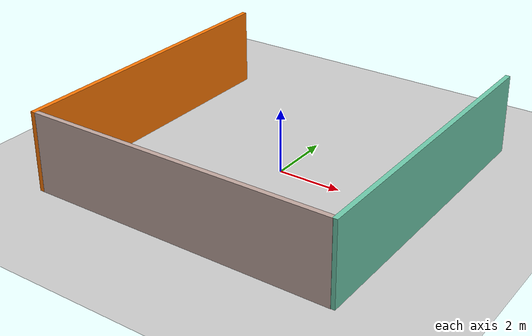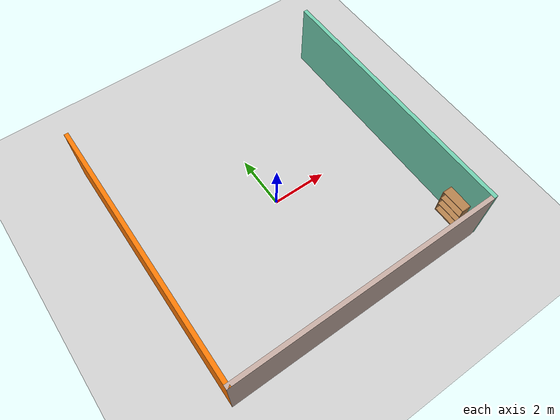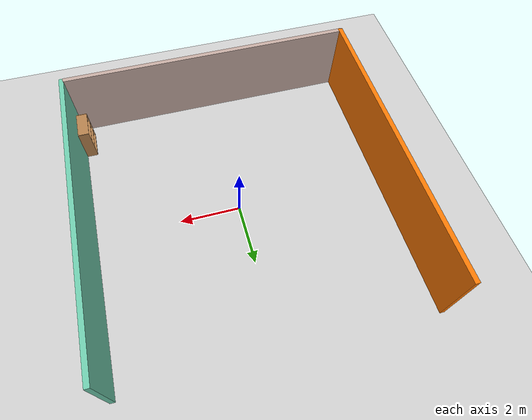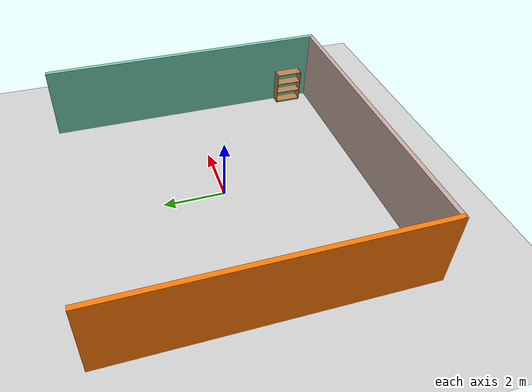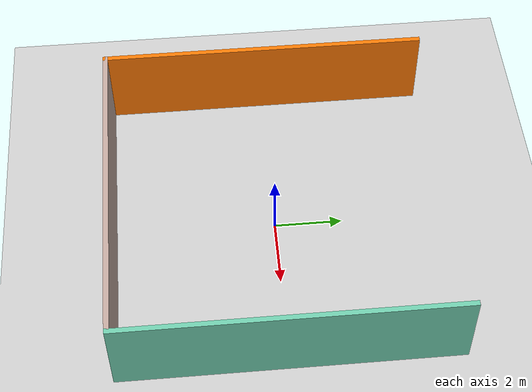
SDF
<sdf version="1.7">
 <world name="default">
  <light name="sun" type="directional">
   <pose>0 0 10 0 -0 0</pose>
   <diffuse>0.8 0.8 0.8 1</diffuse>
   <specular>0.1 0.1 0.1 1</specular>
   <attenuation>
    <range>1000</range>
    <constant>0.9</constant>
    <linear>0.01</linear>
    <quadratic>0.001</quadratic>
   </attenuation>
   <direction>-0.5 0.5 -1</direction>
   <spot><inner_angle>0</inner_angle><outer_angle>0</outer_angle><falloff>0</falloff></spot>
  </light>
  <model name="ground_plane">
   <static>1</static>
   <link name="link">
    <collision name="collision">
     <geometry><plane><normal>0 0 1</normal><size>100 100</size></plane></geometry>
     <surface><friction><ode><mu>100</mu><mu2>50</mu2></ode></friction></surface>
    </collision>
    <visual name="visual">
     <cast_shadows>0</cast_shadows>
     <geometry><plane><normal>0 0 1</normal><size>100 100</size></plane></geometry>
     <material>
      <script><uri>file://media/materials/scripts/gazebo.material</uri><name>Gazebo/Grey</name></script>
     </material>
    </visual>
   </link>
  </model>
  <gravity>0 0 -9.8</gravity>
  <magnetic_field>6e-06 2.3e-05 -4.2e-05</magnetic_field>
  <atmosphere type="adiabatic"/>
  <physics name="default_physics" default="0" type="ode">
   <max_step_size>0.001</max_step_size>
   <real_time_factor>1</real_time_factor>
   <real_time_update_rate>1000</real_time_update_rate>
  </physics>
  <scene><ambient>0.4 0.4 0.4 1</ambient><background>0.7 0.7 0.7 1</background><shadows>1</shadows></scene>
  <spherical_coordinates>
   <surface_model>EARTH_WGS84</surface_model>
   <latitude_deg>0</latitude_deg>
   <longitude_deg>0</longitude_deg>
   <elevation>0</elevation>
   <heading_deg>0</heading_deg>
  </spherical_coordinates>
  <model name="bookshelf">
   <static>1</static>
   <link name="link">
    <inertial><mass>1</mass></inertial>
    <collision name="back">
     <pose>0 0.005 0.6 0 -0 0</pose>
     <geometry><box><size>0.9 0.01 1.2</size></box></geometry>
    </collision>
    <visual name="visual1">
     <pose>0 0.005 0.6 0 -0 0</pose>
     <geometry><box><size>0.9 0.01 1.2</size></box></geometry>
     <material>
      <script><uri>file://media/materials/scripts/gazebo.material</uri><name>Gazebo/Wood</name></script>
     </material>
    </visual>
    <collision name="left_side">
     <pose>0.45 -0.195 0.6 0 -0 0</pose>
     <geometry><box><size>0.02 0.4 1.2</size></box></geometry>
    </collision>
    <visual name="visual2">
     <pose>0.45 -0.195 0.6 0 -0 0</pose>
     <geometry><box><size>0.02 0.4 1.2</size></box></geometry>
     <material>
      <script><uri>file://media/materials/scripts/gazebo.material</uri><name>Gazebo/Wood</name></script>
     </material>
    </visual>
    <collision name="right_side">
     <pose>-0.45 -0.195 0.6 0 -0 0</pose>
     <geometry><box><size>0.02 0.4 1.2</size></box></geometry>
    </collision>
    <visual name="visual3">
     <pose>-0.45 -0.195 0.6 0 -0 0</pose>
     <geometry><box><size>0.02 0.4 1.2</size></box></geometry>
     <material>
      <script><uri>file://media/materials/scripts/gazebo.material</uri><name>Gazebo/Wood</name></script>
     </material>
    </visual>
    <collision name="bottom">
     <pose>0 -0.195 0.03 0 -0 0</pose>
     <geometry><box><size>0.88 0.4 0.06</size></box></geometry>
    </collision>
    <visual name="visual4">
     <pose>0 -0.195 0.03 0 -0 0</pose>
     <geometry><box><size>0.88 0.4 0.06</size></box></geometry>
     <material>
      <script><uri>file://media/materials/scripts/gazebo.material</uri><name>Gazebo/Wood</name></script>
     </material>
    </visual>
    <collision name="top">
     <pose>0 -0.195 1.19 0 -0 0</pose>
     <geometry><box><size>0.88 0.4 0.02</size></box></geometry>
    </collision>
    <visual name="visual5">
     <pose>0 -0.195 1.19 0 -0 0</pose>
     <geometry><box><size>0.88 0.4 0.02</size></box></geometry>
     <material>
      <script><uri>file://media/materials/scripts/gazebo.material</uri><name>Gazebo/Wood</name></script>
     </material>
    </visual>
    <collision name="low_shelf">
     <pose>0 -0.195 0.43 0 -0 0</pose>
     <geometry><box><size>0.88 0.4 0.02</size></box></geometry>
    </collision>
    <visual name="visual6">
     <pose>0 -0.195 0.43 0 -0 0</pose>
     <geometry><box><size>0.88 0.4 0.02</size></box></geometry>
     <material>
      <script><uri>file://media/materials/scripts/gazebo.material</uri><name>Gazebo/Wood</name></script>
     </material>
    </visual>
    <collision name="high_shelf">
     <pose>0 -0.195 0.8 0 -0 0</pose>
     <geometry><box><size>0.88 0.4 0.02</size></box></geometry>
    </collision>
    <visual name="visual7">
     <pose>0 -0.195 0.8 0 -0 0</pose>
     <geometry><box><size>0.88 0.4 0.02</size></box></geometry>
     <material>
      <script><uri>file://media/materials/scripts/gazebo.material</uri><name>Gazebo/Wood</name></script>
     </material>
    </visual>
   </link>
   <pose>4.75971 -3.85961 0.022492 0 0 -1.57</pose>
  </model>
  <model name="Untitled11">
   <pose>-0.06618 0.051512 0 0 -0 0</pose>
   <link name="Wall_11">
    <collision name="Wall_11_Collision">
     <geometry><box><size>9.75 0.15 2.5</size></box></geometry>
     <pose>0 0 1.25 0 -0 0</pose>
    </collision>
    <visual name="Wall_11_Visual">
     <pose>0 0 1.25 0 -0 0</pose>
     <geometry><box><size>9.75 0.15 2.5</size></box></geometry>
     <material>
      <script><uri>file://media/materials/scripts/gazebo.material</uri><name>Gazebo/Grey</name></script>
      <ambient>0.760784 0.662745 0.627451 1</ambient>
     </material>
     <meta><layer>0</layer></meta>
    </visual>
    <pose>-0.062237 -4.80514 0 0 -0 0</pose>
   </link>
   <link name="Wall_4">
    <collision name="Wall_4_Collision">
     <geometry><box><size>9.75 0.15 2.5</size></box></geometry>
     <pose>0 0 1.25 0 -0 0</pose>
    </collision>
    <visual name="Wall_4_Visual">
     <pose>0 0 1.25 0 -0 0</pose>
     <geometry><box><size>9.75 0.15 2.5</size></box></geometry>
     <material>
      <script><uri>file://media/materials/scripts/gazebo.material</uri><name>Gazebo/Grey</name></script>
      <ambient>0.996078 0.47451 0.0196078 1</ambient>
     </material>
     <meta><layer>0</layer></meta>
    </visual>
    <pose>-4.86224 -0.005139 0 0 -0 -1.5708</pose>
   </link>
   <link name="Wall_6">
    <collision name="Wall_6_Collision">
     <geometry><box><size>9.75 0.15 2.5</size></box></geometry>
     <pose>0 0 1.25 0 -0 0</pose>
    </collision>
    <visual name="Wall_6_Visual">
     <pose>0 0 1.25 0 -0 0</pose>
     <geometry><box><size>9.75 0.15 2.5</size></box></geometry>
     <material>
      <script><uri>file://media/materials/scripts/gazebo.material</uri><name>Gazebo/Grey</name></script>
      <ambient>0.435294 0.796078 0.67451 1</ambient>
     </material>
     <meta><layer>0</layer></meta>
    </visual>
    <pose>4.86224 0.005139 0 0 -0 -1.5708</pose>
   </link>
   <static>1</static>
  </model>
 </world>
</sdf>
